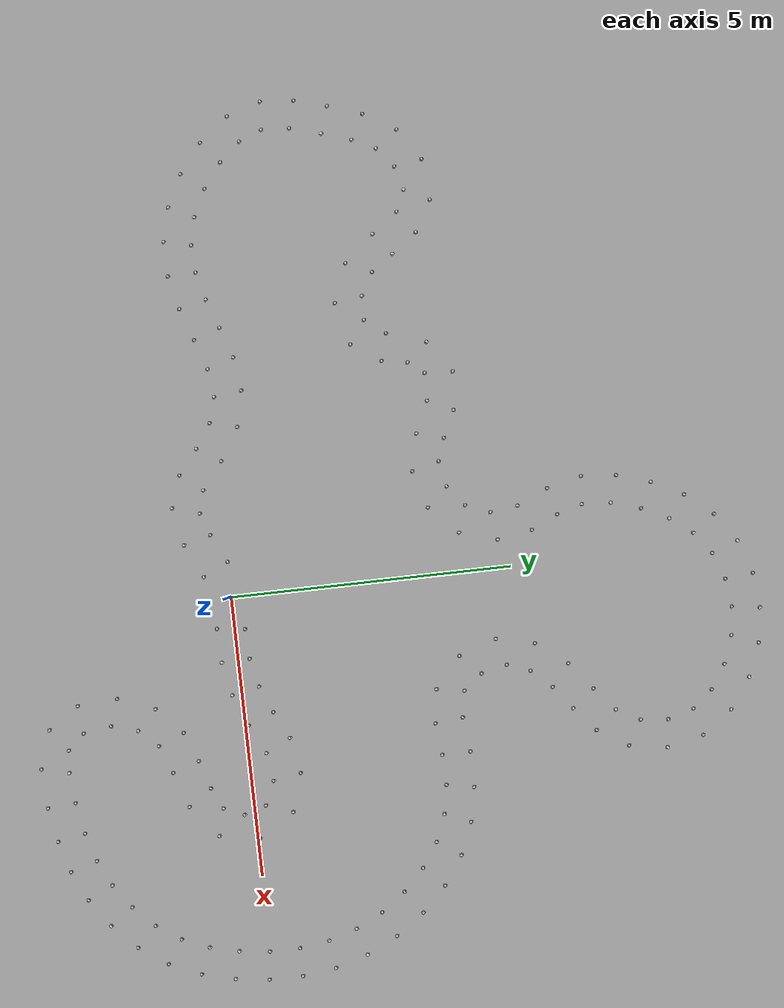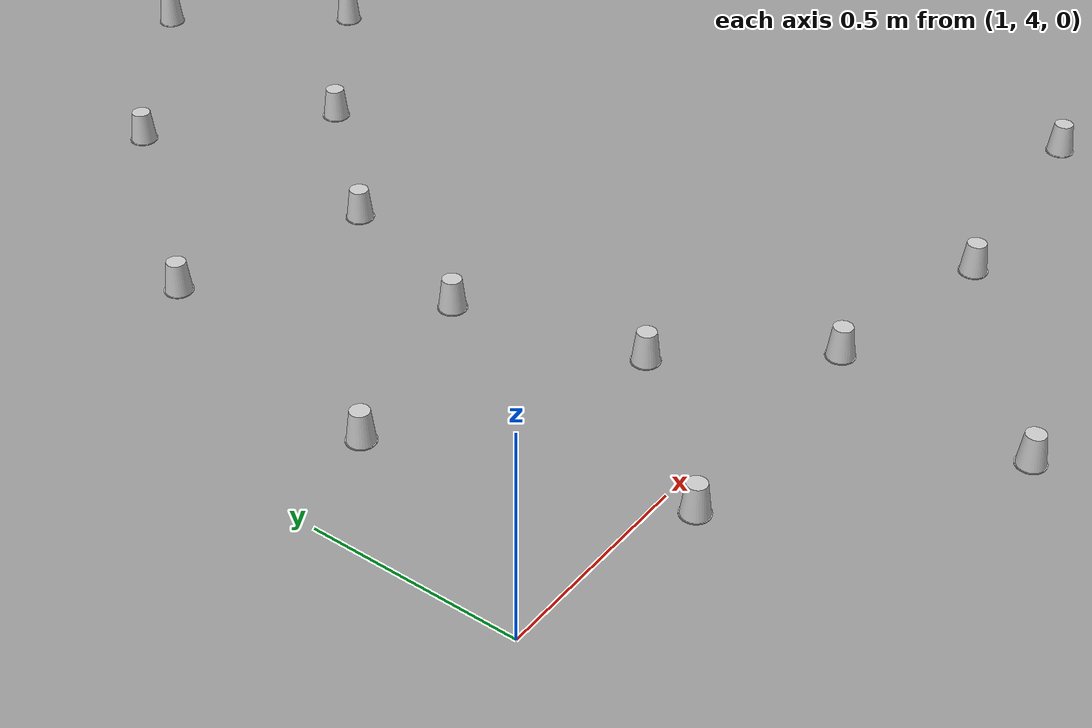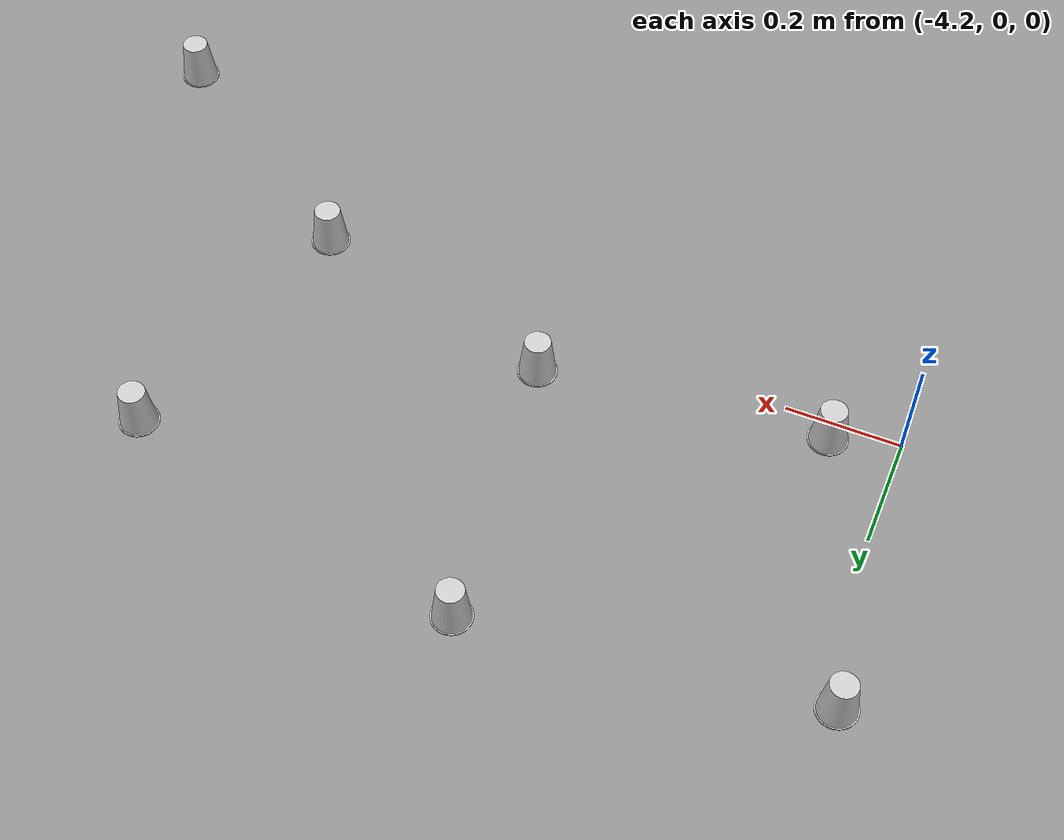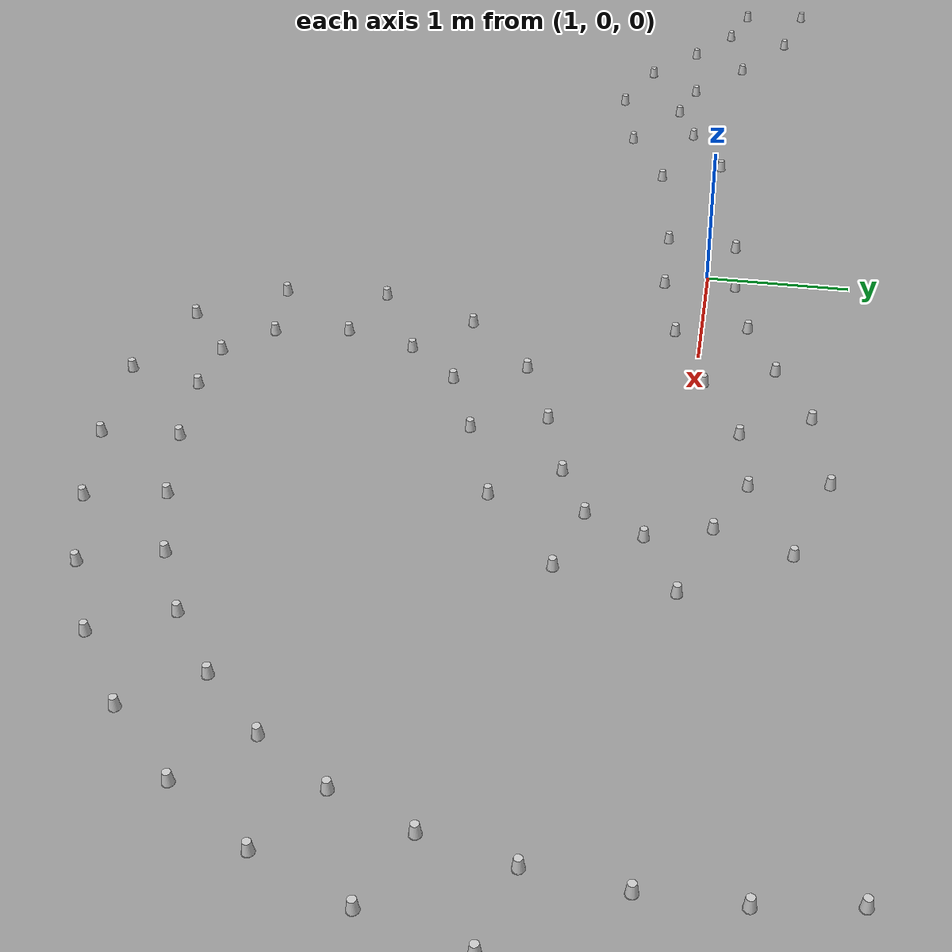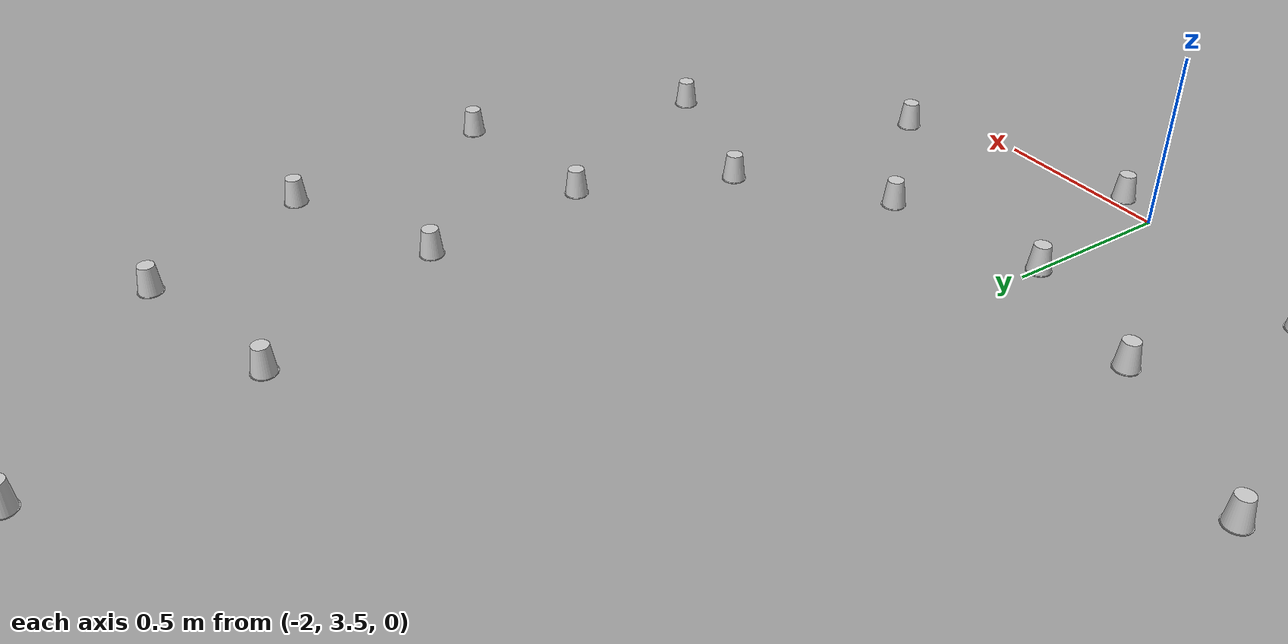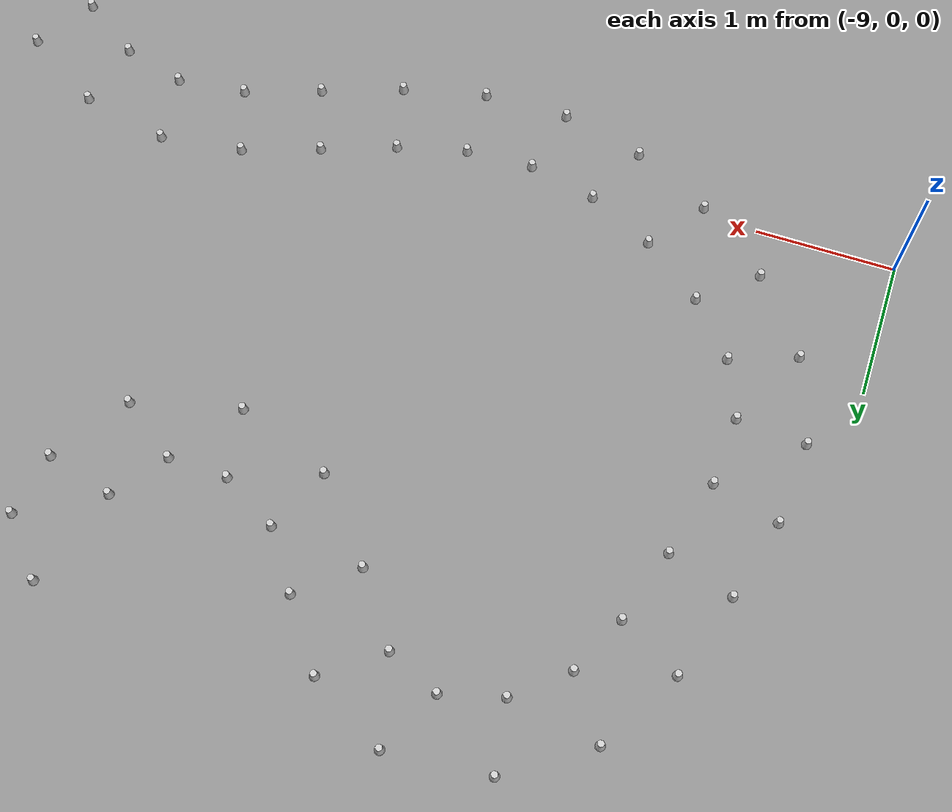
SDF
<?xml version='1.0' encoding='UTF-8'?>
<sdf version="1.4">
  <model name="some track">
    <include>
      <uri>model://cone_yellow</uri>
      <pose>0.5321217742452079 -0.3159063559110775 0 0 0 0</pose>
      <name>cone_right_0</name>
    </include>
    <include>
      <uri>model://cone_yellow</uri>
      <pose>1.1416857632414676 -0.2957108977096994 0 0 0 0</pose>
      <name>cone_right_1</name>
    </include>
    <include>
      <uri>model://cone_yellow</uri>
      <pose>1.7403270318302426 -0.1740750444286121 0 0 0 0</pose>
      <name>cone_right_2</name>
    </include>
    <include>
      <uri>model://cone_yellow</uri>
      <pose>2.307553773380522 0.05538417637377116 0 0 0 0</pose>
      <name>cone_right_3</name>
    </include>
    <include>
      <uri>model://cone_yellow</uri>
      <pose>2.8302709380109103 0.31443893795069716 0 0 0 0</pose>
      <name>cone_right_4</name>
    </include>
    <include>
      <uri>model://cone_yellow</uri>
      <pose>3.3347585574698373 0.3893016759379233 0 0 0 0</pose>
      <name>cone_right_5</name>
    </include>
    <include>
      <uri>model://cone_yellow</uri>
      <pose>3.7555491666766536 0.20499393576140273 0 0 0 0</pose>
      <name>cone_right_6</name>
    </include>
    <include>
      <uri>model://cone_yellow</uri>
      <pose>3.8800982940705713 -0.18955756552094327 0 0 0 0</pose>
      <name>cone_right_7</name>
    </include>
    <include>
      <uri>model://cone_yellow</uri>
      <pose>3.7214240702391477 -0.5536576455410286 0 0 0 0</pose>
      <name>cone_right_8</name>
    </include>
    <include>
      <uri>model://cone_yellow</uri>
      <pose>3.3457719874201963 -0.7376800571583825 0 0 0 0</pose>
      <name>cone_right_9</name>
    </include>
    <include>
      <uri>model://cone_yellow</uri>
      <pose>2.8374565327490515 -0.8969779757188159 0 0 0 0</pose>
      <name>cone_right_10</name>
    </include>
    <include>
      <uri>model://cone_yellow</uri>
      <pose>2.307697647047407 -1.1101412959380283 0 0 0 0</pose>
      <name>cone_right_11</name>
    </include>
    <include>
      <uri>model://cone_yellow</uri>
      <pose>1.8309943137266518 -1.5584639955774156 0 0 0 0</pose>
      <name>cone_right_12</name>
    </include>
    <include>
      <uri>model://cone_yellow</uri>
      <pose>1.577458387615618 -2.220735173299863 0 0 0 0</pose>
      <name>cone_right_13</name>
    </include>
    <include>
      <uri>model://cone_yellow</uri>
      <pose>1.625448648577403 -2.930766429566044 0 0 0 0</pose>
      <name>cone_right_14</name>
    </include>
    <include>
      <uri>model://cone_yellow</uri>
      <pose>1.9973264767931502 -3.4789300710103106 0 0 0 0</pose>
      <name>cone_right_15</name>
    </include>
    <include>
      <uri>model://cone_yellow</uri>
      <pose>2.675817634069069 -3.7003450991171505 0 0 0 0</pose>
      <name>cone_right_16</name>
    </include>
    <include>
      <uri>model://cone_yellow</uri>
      <pose>3.3756165908950635 -3.659529434192186 0 0 0 0</pose>
      <name>cone_right_17</name>
    </include>
    <include>
      <uri>model://cone_yellow</uri>
      <pose>3.988809899391885 -3.5459678156415197 0 0 0 0</pose>
      <name>cone_right_18</name>
    </include>
    <include>
      <uri>model://cone_yellow</uri>
      <pose>4.550549119692251 -3.3751497734317364 0 0 0 0</pose>
      <name>cone_right_19</name>
    </include>
    <include>
      <uri>model://cone_yellow</uri>
      <pose>5.083475930784644 -3.121647805303527 0 0 0 0</pose>
      <name>cone_right_20</name>
    </include>
    <include>
      <uri>model://cone_yellow</uri>
      <pose>5.583838046637296 -2.7726113462350503 0 0 0 0</pose>
      <name>cone_right_21</name>
    </include>
    <include>
      <uri>model://cone_yellow</uri>
      <pose>6.023168754265625 -2.338467236217555 0 0 0 0</pose>
      <name>cone_right_22</name>
    </include>
    <include>
      <uri>model://cone_yellow</uri>
      <pose>6.37349222110829 -1.8296529120129892 0 0 0 0</pose>
      <name>cone_right_23</name>
    </include>
    <include>
      <uri>model://cone_yellow</uri>
      <pose>6.619026981587257 -1.2645228021912023 0 0 0 0</pose>
      <name>cone_right_24</name>
    </include>
    <include>
      <uri>model://cone_yellow</uri>
      <pose>6.76983351850194 -0.671994032101655 0 0 0 0</pose>
      <name>cone_right_25</name>
    </include>
    <include>
      <uri>model://cone_yellow</uri>
      <pose>6.844429826063202 -0.07239920673281774 0 0 0 0</pose>
      <name>cone_right_26</name>
    </include>
    <include>
      <uri>model://cone_yellow</uri>
      <pose>6.84834611701853 0.5269919970958029 0 0 0 0</pose>
      <name>cone_right_27</name>
    </include>
    <include>
      <uri>model://cone_yellow</uri>
      <pose>6.7702389202965625 1.124566108615577 0 0 0 0</pose>
      <name>cone_right_28</name>
    </include>
    <include>
      <uri>model://cone_yellow</uri>
      <pose>6.596472405128966 1.7118982736723276 0 0 0 0</pose>
      <name>cone_right_29</name>
    </include>
    <include>
      <uri>model://cone_yellow</uri>
      <pose>6.323930375123081 2.271503242169829 0 0 0 0</pose>
      <name>cone_right_30</name>
    </include>
    <include>
      <uri>model://cone_yellow</uri>
      <pose>5.963491232766626 2.7804465506991654 0 0 0 0</pose>
      <name>cone_right_31</name>
    </include>
    <include>
      <uri>model://cone_yellow</uri>
      <pose>5.525069916951267 3.219638311803202 0 0 0 0</pose>
      <name>cone_right_32</name>
    </include>
    <include>
      <uri>model://cone_yellow</uri>
      <pose>5.017499935750945 3.5690998390496853 0 0 0 0</pose>
      <name>cone_right_33</name>
    </include>
    <include>
      <uri>model://cone_yellow</uri>
      <pose>4.450730180880337 3.809730003886891 0 0 0 0</pose>
      <name>cone_right_34</name>
    </include>
    <include>
      <uri>model://cone_yellow</uri>
      <pose>3.8400452305488844 3.930834013481301 0 0 0 0</pose>
      <name>cone_right_35</name>
    </include>
    <include>
      <uri>model://cone_yellow</uri>
      <pose>3.2003680279278846 3.9270187748981633 0 0 0 0</pose>
      <name>cone_right_36</name>
    </include>
    <include>
      <uri>model://cone_yellow</uri>
      <pose>2.5848264618607804 3.86235603253658 0 0 0 0</pose>
      <name>cone_right_37</name>
    </include>
    <include>
      <uri>model://cone_yellow</uri>
      <pose>2.1157998088883017 3.9493625136547688 0 0 0 0</pose>
      <name>cone_right_38</name>
    </include>
    <include>
      <uri>model://cone_yellow</uri>
      <pose>1.8423571962202496 4.281841817778122 0 0 0 0</pose>
      <name>cone_right_39</name>
    </include>
    <include>
      <uri>model://cone_yellow</uri>
      <pose>1.7413539726420273 4.7438674981316105 0 0 0 0</pose>
      <name>cone_right_40</name>
    </include>
    <include>
      <uri>model://cone_yellow</uri>
      <pose>1.8957443114459118 5.153947669365357 0 0 0 0</pose>
      <name>cone_right_41</name>
    </include>
    <include>
      <uri>model://cone_yellow</uri>
      <pose>2.221403508843316 5.516853816130485 0 0 0 0</pose>
      <name>cone_right_42</name>
    </include>
    <include>
      <uri>model://cone_yellow</uri>
      <pose>2.639983271441847 5.837684189475017 0 0 0 0</pose>
      <name>cone_right_43</name>
    </include>
    <include>
      <uri>model://cone_yellow</uri>
      <pose>3.0735203474532953 6.2095112374874635 0 0 0 0</pose>
      <name>cone_right_44</name>
    </include>
    <include>
      <uri>model://cone_yellow</uri>
      <pose>3.408248967447545 6.7548099806668835 0 0 0 0</pose>
      <name>cone_right_45</name>
    </include>
    <include>
      <uri>model://cone_yellow</uri>
      <pose>3.5182786314269343 7.431873774444964 0 0 0 0</pose>
      <name>cone_right_46</name>
    </include>
    <include>
      <uri>model://cone_yellow</uri>
      <pose>3.3704236807166437 8.088902426971773 0 0 0 0</pose>
      <name>cone_right_47</name>
    </include>
    <include>
      <uri>model://cone_yellow</uri>
      <pose>2.975081975378342 8.631599474378628 0 0 0 0</pose>
      <name>cone_right_48</name>
    </include>
    <include>
      <uri>model://cone_yellow</uri>
      <pose>2.433455656116603 9.013709559843335 0 0 0 0</pose>
      <name>cone_right_49</name>
    </include>
    <include>
      <uri>model://cone_yellow</uri>
      <pose>1.8408233030524843 9.247179099439768 0 0 0 0</pose>
      <name>cone_right_50</name>
    </include>
    <include>
      <uri>model://cone_yellow</uri>
      <pose>1.2239846018697078 9.340220598382146 0 0 0 0</pose>
      <name>cone_right_51</name>
    </include>
    <include>
      <uri>model://cone_yellow</uri>
      <pose>0.5954843959494533 9.283704157037745 0 0 0 0</pose>
      <name>cone_right_52</name>
    </include>
    <include>
      <uri>model://cone_yellow</uri>
      <pose>-0.004184928570880056 9.073838309346154 0 0 0 0</pose>
      <name>cone_right_53</name>
    </include>
    <include>
      <uri>model://cone_yellow</uri>
      <pose>-0.5221552065574233 8.71257267327359 0 0 0 0</pose>
      <name>cone_right_54</name>
    </include>
    <include>
      <uri>model://cone_yellow</uri>
      <pose>-0.923726906236101 8.221829733009338 0 0 0 0</pose>
      <name>cone_right_55</name>
    </include>
    <include>
      <uri>model://cone_yellow</uri>
      <pose>-1.212067512195018 7.656309401534398 0 0 0 0</pose>
      <name>cone_right_56</name>
    </include>
    <include>
      <uri>model://cone_yellow</uri>
      <pose>-1.4007049708258423 7.054399390426159 0 0 0 0</pose>
      <name>cone_right_57</name>
    </include>
    <include>
      <uri>model://cone_yellow</uri>
      <pose>-1.4532142996819175 6.430166486212452 0 0 0 0</pose>
      <name>cone_right_58</name>
    </include>
    <include>
      <uri>model://cone_yellow</uri>
      <pose>-1.3054325568171885 5.809042790546367 0 0 0 0</pose>
      <name>cone_right_59</name>
    </include>
    <include>
      <uri>model://cone_yellow</uri>
      <pose>-1.056811644047229 5.248827904825018 0 0 0 0</pose>
      <name>cone_right_60</name>
    </include>
    <include>
      <uri>model://cone_yellow</uri>
      <pose>-0.991727934573061 4.755362302219501 0 0 0 0</pose>
      <name>cone_right_61</name>
    </include>
    <include>
      <uri>model://cone_yellow</uri>
      <pose>-1.1677684450034658 4.321865321641946 0 0 0 0</pose>
      <name>cone_right_62</name>
    </include>
    <include>
      <uri>model://cone_yellow</uri>
      <pose>-1.5362431538299555 4.029988215554897 0 0 0 0</pose>
      <name>cone_right_63</name>
    </include>
    <include>
      <uri>model://cone_yellow</uri>
      <pose>-1.9973360173877852 3.9386937704180434 0 0 0 0</pose>
      <name>cone_right_64</name>
    </include>
    <include>
      <uri>model://cone_yellow</uri>
      <pose>-2.4038288070131903 4.080147998525502 0 0 0 0</pose>
      <name>cone_right_65</name>
    </include>
    <include>
      <uri>model://cone_yellow</uri>
      <pose>-2.8790003145078384 4.307945228570184 0 0 0 0</pose>
      <name>cone_right_66</name>
    </include>
    <include>
      <uri>model://cone_yellow</uri>
      <pose>-3.560190336015489 4.3641815663340315 0 0 0 0</pose>
      <name>cone_right_67</name>
    </include>
    <include>
      <uri>model://cone_yellow</uri>
      <pose>-4.134751120799399 3.9603823236759483 0 0 0 0</pose>
      <name>cone_right_68</name>
    </include>
    <include>
      <uri>model://cone_yellow</uri>
      <pose>-4.3691290846517425 3.2607399468291782 0 0 0 0</pose>
      <name>cone_right_69</name>
    </include>
    <include>
      <uri>model://cone_yellow</uri>
      <pose>-4.648420916491505 2.8981729448434352 0 0 0 0</pose>
      <name>cone_right_70</name>
    </include>
    <include>
      <uri>model://cone_yellow</uri>
      <pose>-5.0757777347821085 2.908852174924434 0 0 0 0</pose>
      <name>cone_right_71</name>
    </include>
    <include>
      <uri>model://cone_yellow</uri>
      <pose>-5.47930464220712 3.13643928360878 0 0 0 0</pose>
      <name>cone_right_72</name>
    </include>
    <include>
      <uri>model://cone_yellow</uri>
      <pose>-5.761268760595925 3.5299479912344545 0 0 0 0</pose>
      <name>cone_right_73</name>
    </include>
    <include>
      <uri>model://cone_yellow</uri>
      <pose>-6.09752308636477 3.985054182590234 0 0 0 0</pose>
      <name>cone_right_74</name>
    </include>
    <include>
      <uri>model://cone_yellow</uri>
      <pose>-6.646638024091716 4.297910802878751 0 0 0 0</pose>
      <name>cone_right_75</name>
    </include>
    <include>
      <uri>model://cone_yellow</uri>
      <pose>-7.38164613131876 4.233003814043068 0 0 0 0</pose>
      <name>cone_right_76</name>
    </include>
    <include>
      <uri>model://cone_yellow</uri>
      <pose>-7.954047460943797 3.849813759645356 0 0 0 0</pose>
      <name>cone_right_77</name>
    </include>
    <include>
      <uri>model://cone_yellow</uri>
      <pose>-8.29847600095584 3.2738032206052914 0 0 0 0</pose>
      <name>cone_right_78</name>
    </include>
    <include>
      <uri>model://cone_yellow</uri>
      <pose>-8.504834530568246 2.6653358076428613 0 0 0 0</pose>
      <name>cone_right_79</name>
    </include>
    <include>
      <uri>model://cone_yellow</uri>
      <pose>-8.667891635082508 2.0840785222468887 0 0 0 0</pose>
      <name>cone_right_80</name>
    </include>
    <include>
      <uri>model://cone_yellow</uri>
      <pose>-8.714461255933657 1.4840406661342946 0 0 0 0</pose>
      <name>cone_right_81</name>
    </include>
    <include>
      <uri>model://cone_yellow</uri>
      <pose>-8.518893076005716 0.8706239394811415 0 0 0 0</pose>
      <name>cone_right_82</name>
    </include>
    <include>
      <uri>model://cone_yellow</uri>
      <pose>-8.106378066561323 0.3431458340654807 0 0 0 0</pose>
      <name>cone_right_83</name>
    </include>
    <include>
      <uri>model://cone_yellow</uri>
      <pose>-7.588193120540882 -0.06429993139053738 0 0 0 0</pose>
      <name>cone_right_84</name>
    </include>
    <include>
      <uri>model://cone_yellow</uri>
      <pose>-7.0234198766587665 -0.34946148667246757 0 0 0 0</pose>
      <name>cone_right_85</name>
    </include>
    <include>
      <uri>model://cone_yellow</uri>
      <pose>-6.423466651836119 -0.49871533596304507 0 0 0 0</pose>
      <name>cone_right_86</name>
    </include>
    <include>
      <uri>model://cone_yellow</uri>
      <pose>-5.8054512402141025 -0.4902767084580322 0 0 0 0</pose>
      <name>cone_right_87</name>
    </include>
    <include>
      <uri>model://cone_yellow</uri>
      <pose>-5.201831773641301 -0.3517572659535026 0 0 0 0</pose>
      <name>cone_right_88</name>
    </include>
    <include>
      <uri>model://cone_yellow</uri>
      <pose>-4.627023387591471 -0.15123971033286815 0 0 0 0</pose>
      <name>cone_right_89</name>
    </include>
    <include>
      <uri>model://cone_yellow</uri>
      <pose>-4.082117917415831 0.0325239633314445 0 0 0 0</pose>
      <name>cone_right_90</name>
    </include>
    <include>
      <uri>model://cone_yellow</uri>
      <pose>-3.5803436979909877 0.0883215199361321 0 0 0 0</pose>
      <name>cone_right_91</name>
    </include>
    <include>
      <uri>model://cone_yellow</uri>
      <pose>-3.1220372117848236 -0.041201996683839254 0 0 0 0</pose>
      <name>cone_right_92</name>
    </include>
    <include>
      <uri>model://cone_yellow</uri>
      <pose>-2.6973567614898175 -0.3290761997178983 0 0 0 0</pose>
      <name>cone_right_93</name>
    </include>
    <include>
      <uri>model://cone_yellow</uri>
      <pose>-2.257977042377452 -0.6763705735864891 0 0 0 0</pose>
      <name>cone_right_94</name>
    </include>
    <include>
      <uri>model://cone_yellow</uri>
      <pose>-1.6906299537162268 -0.8704674875800121 0 0 0 0</pose>
      <name>cone_right_95</name>
    </include>
    <include>
      <uri>model://cone_yellow</uri>
      <pose>-1.0126057780132292 -0.7328179900779718 0 0 0 0</pose>
      <name>cone_right_96</name>
    </include>
    <include>
      <uri>model://cone_yellow</uri>
      <pose>-0.4119482861048229 -0.4443599274609209 0 0 0 0</pose>
      <name>cone_right_97</name>
    </include>
    <include>
      <uri>model://cone_blue</uri>
      <pose>0.5919192015444442 0.18050503365245024 0 0 0 0</pose>
      <name>cone_left_0</name>
    </include>
    <include>
      <uri>model://cone_blue</uri>
      <pose>1.122574403623236 0.20392372472307663 0 0 0 0</pose>
      <name>cone_left_1</name>
    </include>
    <include>
      <uri>model://cone_blue</uri>
      <pose>1.6379470174452808 0.3153310575506491 0 0 0 0</pose>
      <name>cone_left_2</name>
    </include>
    <include>
      <uri>model://cone_blue</uri>
      <pose>2.116817586927298 0.5175742965378451 0 0 0 0</pose>
      <name>cone_left_3</name>
    </include>
    <include>
      <uri>model://cone_blue</uri>
      <pose>2.6077781948700682 0.7622078283949345 0 0 0 0</pose>
      <name>cone_left_4</name>
    </include>
    <include>
      <uri>model://cone_blue</uri>
      <pose>3.251052410309578 0.882245162483374 0 0 0 0</pose>
      <name>cone_left_5</name>
    </include>
    <include>
      <uri>model://cone_blue</uri>
      <pose>3.923781583697662 0.6758419514344749 0 0 0 0</pose>
      <name>cone_left_6</name>
    </include>
    <include>
      <uri>model://cone_blue</uri>
      <pose>4.325592510551875 0.03745543648931503 0 0 0 0</pose>
      <name>cone_left_7</name>
    </include>
    <include>
      <uri>model://cone_blue</uri>
      <pose>4.205567605935249 -0.678577767393666 0 0 0 0</pose>
      <name>cone_left_8</name>
    </include>
    <include>
      <uri>model://cone_blue</uri>
      <pose>3.6291890424402737 -1.1495960351487324 0 0 0 0</pose>
      <name>cone_left_9</name>
    </include>
    <include>
      <uri>model://cone_blue</uri>
      <pose>2.9957112740666094 -1.3712726487339288 0 0 0 0</pose>
      <name>cone_left_10</name>
    </include>
    <include>
      <uri>model://cone_blue</uri>
      <pose>2.4947252457172855 -1.5738445171213398 0 0 0 0</pose>
      <name>cone_left_11</name>
    </include>
    <include>
      <uri>model://cone_blue</uri>
      <pose>2.1844611163756222 -1.912103952914131 0 0 0 0</pose>
      <name>cone_left_12</name>
    </include>
    <include>
      <uri>model://cone_blue</uri>
      <pose>2.0505482828095962 -2.382555910739015 0 0 0 0</pose>
      <name>cone_left_13</name>
    </include>
    <include>
      <uri>model://cone_blue</uri>
      <pose>2.1229851361648526 -2.8811938210090626 0 0 0 0</pose>
      <name>cone_left_14</name>
    </include>
    <include>
      <uri>model://cone_blue</uri>
      <pose>2.3946460144753194 -3.1753889947520433 0 0 0 0</pose>
      <name>cone_left_15</name>
    </include>
    <include>
      <uri>model://cone_blue</uri>
      <pose>2.7932950626047774 -3.2143419573735628 0 0 0 0</pose>
      <name>cone_left_16</name>
    </include>
    <include>
      <uri>model://cone_blue</uri>
      <pose>3.337873682836239 -3.1609559963806 0 0 0 0</pose>
      <name>cone_left_17</name>
    </include>
    <include>
      <uri>model://cone_blue</uri>
      <pose>3.896568958467127 -3.054549858280054 0 0 0 0</pose>
      <name>cone_left_18</name>
    </include>
    <include>
      <uri>model://cone_blue</uri>
      <pose>4.403798683244871 -2.8971703707348175 0 0 0 0</pose>
      <name>cone_left_19</name>
    </include>
    <include>
      <uri>model://cone_blue</uri>
      <pose>4.866525493467595 -2.671167497467611 0 0 0 0</pose>
      <name>cone_left_20</name>
    </include>
    <include>
      <uri>model://cone_blue</uri>
      <pose>5.295473939397989 -2.364143303842408 0 0 0 0</pose>
      <name>cone_left_21</name>
    </include>
    <include>
      <uri>model://cone_blue</uri>
      <pose>5.669636784336524 -1.9848924262578387 0 0 0 0</pose>
      <name>cone_left_22</name>
    </include>
    <include>
      <uri>model://cone_blue</uri>
      <pose>5.959616708573392 -1.5491051262010587 0 0 0 0</pose>
      <name>cone_left_23</name>
    </include>
    <include>
      <uri>model://cone_blue</uri>
      <pose>6.158946230768554 -1.0687532878992694 0 0 0 0</pose>
      <name>cone_left_24</name>
    </include>
    <include>
      <uri>model://cone_blue</uri>
      <pose>6.284657950137424 -0.5511442581582621 0 0 0 0</pose>
      <name>cone_left_25</name>
    </include>
    <include>
      <uri>model://cone_blue</uri>
      <pose>6.348062967256617 -0.012233257239068759 0 0 0 0</pose>
      <name>cone_left_26</name>
    </include>
    <include>
      <uri>model://cone_blue</uri>
      <pose>6.348349512184854 0.5288345916785685 0 0 0 0</pose>
      <name>cone_left_27</name>
    </include>
    <include>
      <uri>model://cone_blue</uri>
      <pose>6.274713852913238 1.0578210144531426 0 0 0 0</pose>
      <name>cone_left_28</name>
    </include>
    <include>
      <uri>model://cone_blue</uri>
      <pose>6.1177518455300754 1.5675839437624903 0 0 0 0</pose>
      <name>cone_left_29</name>
    </include>
    <include>
      <uri>model://cone_blue</uri>
      <pose>5.875622898508204 2.050097717371549 0 0 0 0</pose>
      <name>cone_left_30</name>
    </include>
    <include>
      <uri>model://cone_blue</uri>
      <pose>5.556992544946001 2.489312875559875 0 0 0 0</pose>
      <name>cone_left_31</name>
    </include>
    <include>
      <uri>model://cone_blue</uri>
      <pose>5.173232905555263 2.864376834280056 0 0 0 0</pose>
      <name>cone_left_32</name>
    </include>
    <include>
      <uri>model://cone_blue</uri>
      <pose>4.73679760551584 3.1553291274223616 0 0 0 0</pose>
      <name>cone_left_33</name>
    </include>
    <include>
      <uri>model://cone_blue</uri>
      <pose>4.259170213082861 3.347880700826434 0 0 0 0</pose>
      <name>cone_left_34</name>
    </include>
    <include>
      <uri>model://cone_blue</uri>
      <pose>3.746947783121239 3.439577598477429 0 0 0 0</pose>
      <name>cone_left_35</name>
    </include>
    <include>
      <uri>model://cone_blue</uri>
      <pose>3.2072891242220227 3.4270666787668564 0 0 0 0</pose>
      <name>cone_left_36</name>
    </include>
    <include>
      <uri>model://cone_blue</uri>
      <pose>2.6379236711520564 3.3651833398376767 0 0 0 0</pose>
      <name>cone_left_37</name>
    </include>
    <include>
      <uri>model://cone_blue</uri>
      <pose>2.0340041707786614 3.456098412400444 0 0 0 0</pose>
      <name>cone_left_38</name>
    </include>
    <include>
      <uri>model://cone_blue</uri>
      <pose>1.491865995469682 3.9252525327506196 0 0 0 0</pose>
      <name>cone_left_39</name>
    </include>
    <include>
      <uri>model://cone_blue</uri>
      <pose>1.2612216506515204 4.6043219737318495 0 0 0 0</pose>
      <name>cone_left_40</name>
    </include>
    <include>
      <uri>model://cone_blue</uri>
      <pose>1.414372655608442 5.289156134175415 0 0 0 0</pose>
      <name>cone_left_41</name>
    </include>
    <include>
      <uri>model://cone_blue</uri>
      <pose>1.835142951686665 5.83434835464262 0 0 0 0</pose>
      <name>cone_left_42</name>
    </include>
    <include>
      <uri>model://cone_blue</uri>
      <pose>2.3313964198185135 6.231097655189141 0 0 0 0</pose>
      <name>cone_left_43</name>
    </include>
    <include>
      <uri>model://cone_blue</uri>
      <pose>2.7478494495226378 6.588903470197938 0 0 0 0</pose>
      <name>cone_left_44</name>
    </include>
    <include>
      <uri>model://cone_blue</uri>
      <pose>2.9766340472700503 7.007215528704511 0 0 0 0</pose>
      <name>cone_left_45</name>
    </include>
    <include>
      <uri>model://cone_blue</uri>
      <pose>3.022684333222342 7.498102858593074 0 0 0 0</pose>
      <name>cone_left_46</name>
    </include>
    <include>
      <uri>model://cone_blue</uri>
      <pose>2.8857138505751507 7.966197983025331 0 0 0 0</pose>
      <name>cone_left_47</name>
    </include>
    <include>
      <uri>model://cone_blue</uri>
      <pose>2.5803575111532773 8.32469134913227 0 0 0 0</pose>
      <name>cone_left_48</name>
    </include>
    <include>
      <uri>model://cone_blue</uri>
      <pose>2.1528027542985484 8.59990532025521 0 0 0 0</pose>
      <name>cone_left_49</name>
    </include>
    <include>
      <uri>model://cone_blue</uri>
      <pose>1.662420078645161 8.780089932876175 0 0 0 0</pose>
      <name>cone_left_50</name>
    </include>
    <include>
      <uri>model://cone_blue</uri>
      <pose>1.1544199517284952 8.845083486613365 0 0 0 0</pose>
      <name>cone_left_51</name>
    </include>
    <include>
      <uri>model://cone_blue</uri>
      <pose>0.6459489969905909 8.786257351799476 0 0 0 0</pose>
      <name>cone_left_52</name>
    </include>
    <include>
      <uri>model://cone_blue</uri>
      <pose>0.16662613053064934 8.603919612028616 0 0 0 0</pose>
      <name>cone_left_53</name>
    </include>
    <include>
      <uri>model://cone_blue</uri>
      <pose>-0.23004133237882426 8.306777793423722 0 0 0 0</pose>
      <name>cone_left_54</name>
    </include>
    <include>
      <uri>model://cone_blue</uri>
      <pose>-0.5320879564496989 7.910993871162279 0 0 0 0</pose>
      <name>cone_left_55</name>
    </include>
    <include>
      <uri>model://cone_blue</uri>
      <pose>-0.7647169704398451 7.432976706231284 0 0 0 0</pose>
      <name>cone_left_56</name>
    </include>
    <include>
      <uri>model://cone_blue</uri>
      <pose>-0.9227920693066703 6.907432528305726 0 0 0 0</pose>
      <name>cone_left_57</name>
    </include>
    <include>
      <uri>model://cone_blue</uri>
      <pose>-0.9545794281177514 6.393244069441773 0 0 0 0</pose>
      <name>cone_left_58</name>
    </include>
    <include>
      <uri>model://cone_blue</uri>
      <pose>-0.8215396244962302 5.934930161040092 0 0 0 0</pose>
      <name>cone_left_59</name>
    </include>
    <include>
      <uri>model://cone_blue</uri>
      <pose>-0.600981909128282 5.4543011458169355 0 0 0 0</pose>
      <name>cone_left_60</name>
    </include>
    <include>
      <uri>model://cone_blue</uri>
      <pose>-0.49732943600168134 4.829995569670187 0 0 0 0</pose>
      <name>cone_left_61</name>
    </include>
    <include>
      <uri>model://cone_blue</uri>
      <pose>-0.6941490010025431 4.161601095239867 0 0 0 0</pose>
      <name>cone_left_62</name>
    </include>
    <include>
      <uri>model://cone_blue</uri>
      <pose>-1.2002075027897996 3.659744996535266 0 0 0 0</pose>
      <name>cone_left_63</name>
    </include>
    <include>
      <uri>model://cone_blue</uri>
      <pose>-1.8707860825341127 3.4549736922855234 0 0 0 0</pose>
      <name>cone_left_64</name>
    </include>
    <include>
      <uri>model://cone_blue</uri>
      <pose>-2.532074225839457 3.5968746674279997 0 0 0 0</pose>
      <name>cone_left_65</name>
    </include>
    <include>
      <uri>model://cone_blue</uri>
      <pose>-3.091684538646955 3.8554350952003977 0 0 0 0</pose>
      <name>cone_left_66</name>
    </include>
    <include>
      <uri>model://cone_blue</uri>
      <pose>-3.5880689689509135 3.864959389517284 0 0 0 0</pose>
      <name>cone_left_67</name>
    </include>
    <include>
      <uri>model://cone_blue</uri>
      <pose>-3.8077539614368154 3.5821325943055227 0 0 0 0</pose>
      <name>cone_left_68</name>
    </include>
    <include>
      <uri>model://cone_blue</uri>
      <pose>-3.8866439589098256 3.129560285914055 0 0 0 0</pose>
      <name>cone_left_69</name>
    </include>
    <include>
      <uri>model://cone_blue</uri>
      <pose>-4.242068214795228 2.606835542809063 0 0 0 0</pose>
      <name>cone_left_70</name>
    </include>
    <include>
      <uri>model://cone_blue</uri>
      <pose>-5.000084629526001 2.4146148292931193 0 0 0 0</pose>
      <name>cone_left_71</name>
    </include>
    <include>
      <uri>model://cone_blue</uri>
      <pose>-5.685836655520745 2.6810882898944577 0 0 0 0</pose>
      <name>cone_left_72</name>
    </include>
    <include>
      <uri>model://cone_blue</uri>
      <pose>-6.150922062398157 3.216626583739501 0 0 0 0</pose>
      <name>cone_left_73</name>
    </include>
    <include>
      <uri>model://cone_blue</uri>
      <pose>-6.4995574973064905 3.6877860672149976 0 0 0 0</pose>
      <name>cone_left_74</name>
    </include>
    <include>
      <uri>model://cone_blue</uri>
      <pose>-6.876332515002855 3.853793204888002 0 0 0 0</pose>
      <name>cone_left_75</name>
    </include>
    <include>
      <uri>model://cone_blue</uri>
      <pose>-7.305302332123711 3.738866561526658 0 0 0 0</pose>
      <name>cone_left_76</name>
    </include>
    <include>
      <uri>model://cone_blue</uri>
      <pose>-7.659282201144495 3.445940708284597 0 0 0 0</pose>
      <name>cone_left_77</name>
    </include>
    <include>
      <uri>model://cone_blue</uri>
      <pose>-7.8606496378167385 3.032332568681735 0 0 0 0</pose>
      <name>cone_left_78</name>
    </include>
    <include>
      <uri>model://cone_blue</uri>
      <pose>-8.030285061966058 2.5078467545331837 0 0 0 0</pose>
      <name>cone_left_79</name>
    </include>
    <include>
      <uri>model://cone_blue</uri>
      <pose>-8.186412513447888 1.9492532448321733 0 0 0 0</pose>
      <name>cone_left_80</name>
    </include>
    <include>
      <uri>model://cone_blue</uri>
      <pose>-8.215645007385248 1.4496553468236644 0 0 0 0</pose>
      <name>cone_left_81</name>
    </include>
    <include>
      <uri>model://cone_blue</uri>
      <pose>-8.047641264486616 1.0377219051778146 0 0 0 0</pose>
      <name>cone_left_82</name>
    </include>
    <include>
      <uri>model://cone_blue</uri>
      <pose>-7.719388141869486 0.659750948027664 0 0 0 0</pose>
      <name>cone_left_83</name>
    </include>
    <include>
      <uri>model://cone_blue</uri>
      <pose>-7.283036042725244 0.3317798053532406 0 0 0 0</pose>
      <name>cone_left_84</name>
    </include>
    <include>
      <uri>model://cone_blue</uri>
      <pose>-6.801460569112288 0.09857206764404527 0 0 0 0</pose>
      <name>cone_left_85</name>
    </include>
    <include>
      <uri>model://cone_blue</uri>
      <pose>-6.307774362626931 -0.012284154584283224 0 0 0 0</pose>
      <name>cone_left_86</name>
    </include>
    <include>
      <uri>model://cone_blue</uri>
      <pose>-5.819117421230903 0.009536492144368913 0 0 0 0</pose>
      <name>cone_left_87</name>
    </include>
    <include>
      <uri>model://cone_blue</uri>
      <pose>-5.317854860480221 0.13459511999763935 0 0 0 0</pose>
      <name>cone_left_88</name>
    </include>
    <include>
      <uri>model://cone_blue</uri>
      <pose>-4.7927520867721345 0.3204953829852838 0 0 0 0</pose>
      <name>cone_left_89</name>
    </include>
    <include>
      <uri>model://cone_blue</uri>
      <pose>-4.241912679545411 0.5063020062966614 0 0 0 0</pose>
      <name>cone_left_90</name>
    </include>
    <include>
      <uri>model://cone_blue</uri>
      <pose>-3.64071578973498 0.584663348254535 0 0 0 0</pose>
      <name>cone_left_91</name>
    </include>
    <include>
      <uri>model://cone_blue</uri>
      <pose>-3.0025380995877406 0.44430800546246974 0 0 0 0</pose>
      <name>cone_left_92</name>
    </include>
    <include>
      <uri>model://cone_blue</uri>
      <pose>-2.427676326835521 0.09196116580287077 0 0 0 0</pose>
      <name>cone_left_93</name>
    </include>
    <include>
      <uri>model://cone_blue</uri>
      <pose>-1.9487516945894825 -0.28345877141530296 0 0 0 0</pose>
      <name>cone_left_94</name>
    </include>
    <include>
      <uri>model://cone_blue</uri>
      <pose>-1.5418043596027946 -0.39313014089866993 0 0 0 0</pose>
      <name>cone_left_95</name>
    </include>
    <include>
      <uri>model://cone_blue</uri>
      <pose>-1.1387191735925333 -0.24898391577619428 0 0 0 0</pose>
      <name>cone_left_96</name>
    </include>
    <include>
      <uri>model://cone_blue</uri>
      <pose>-0.6317731194759526 0.004724744547994458 0 0 0 0</pose>
      <name>cone_left_97</name>
    </include>
  </model>
</sdf>

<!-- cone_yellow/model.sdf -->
<sdf version='1.4'>
  <model name="cone_yellow">
    <link name="link">
    <collision name="collision"><geometry><box><size> 0.05 0.05 0.01</size>
             </box></geometry></collision>
      <visual name="visual">
        <geometry>
          <mesh>
            <uri>model://cup.dae</uri>
            <scale>1 1 1</scale>
          </mesh>
        </geometry>
        <material>
            <script>
              <uri>model://cone_yellow/materials/scripts</uri>
              <uri>model://cone_yellow/materials/textures</uri>
              <name>cone_yellow/Image</name>
            </script>
        </material>
      </visual>
    </link>
  </model>
</sdf>

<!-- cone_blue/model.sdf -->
<sdf version='1.4'>
  <model name="cone_blue">
    <link name="link">
    <collision name="collision"><geometry><box><size> 0.05 0.05 0.01</size>
             </box></geometry></collision>
      <visual name="visual">
        <geometry>
          <mesh>
            <uri>model://cup.dae</uri>
            <scale>1 1 1</scale>
          </mesh>
        </geometry>
        <material>
            <script>
              <uri>model://cone_blue/materials/scripts</uri>
              <uri>model://cone_blue/materials/textures</uri>
              <name>cone_blue/Image</name>
            </script>
        </material>
      </visual>
    </link>
  </model>
</sdf>
